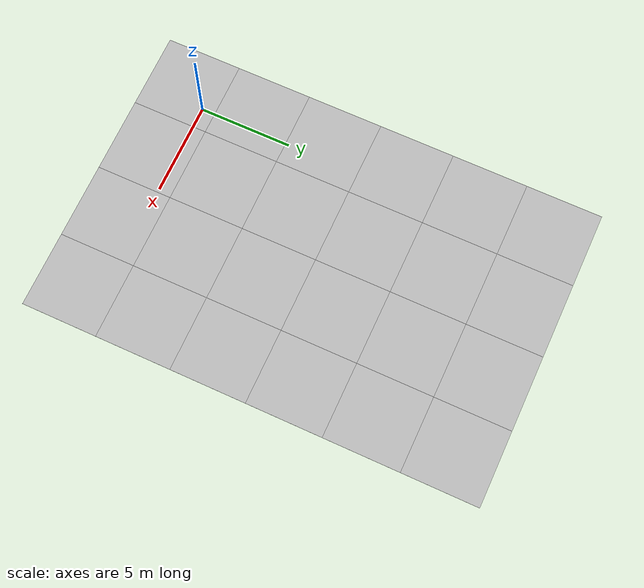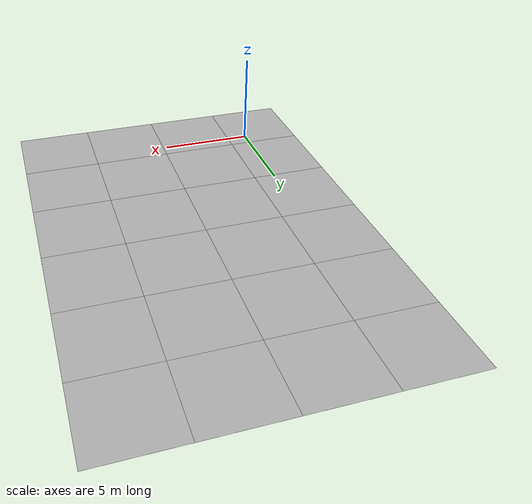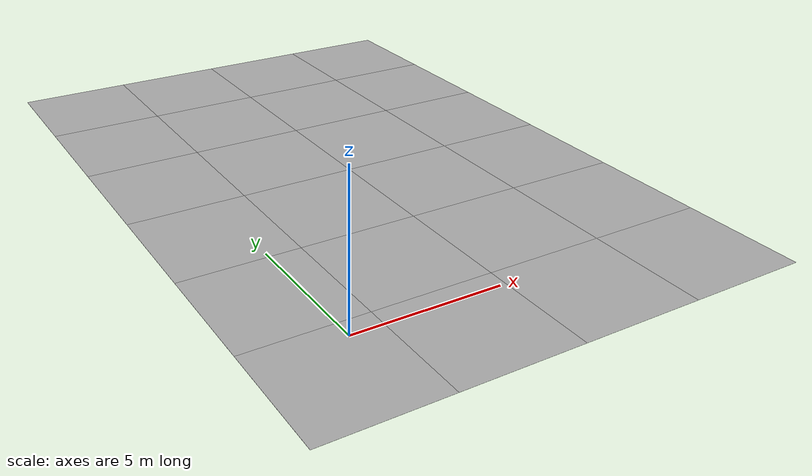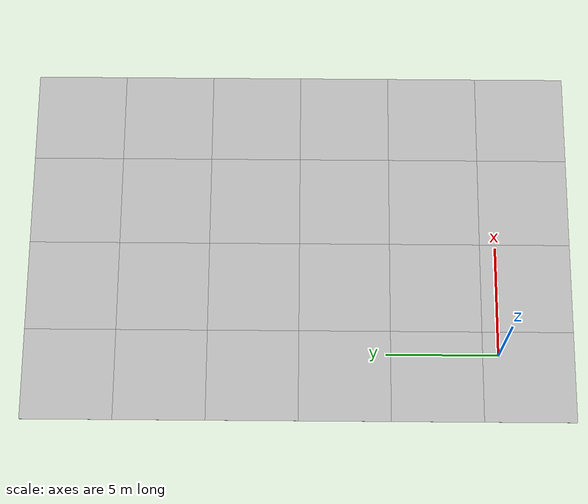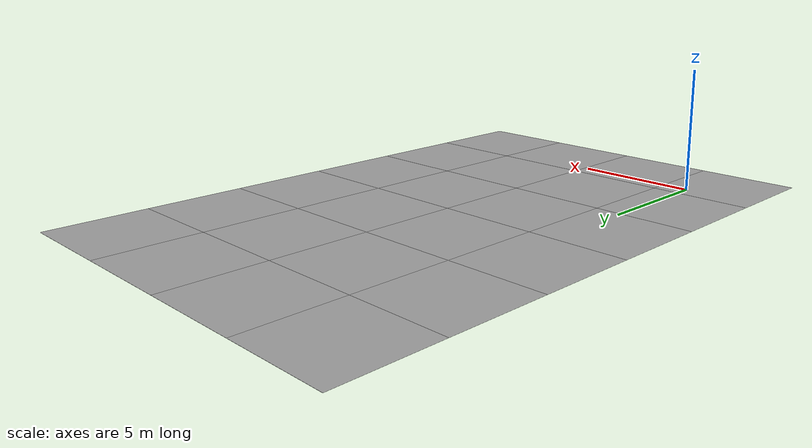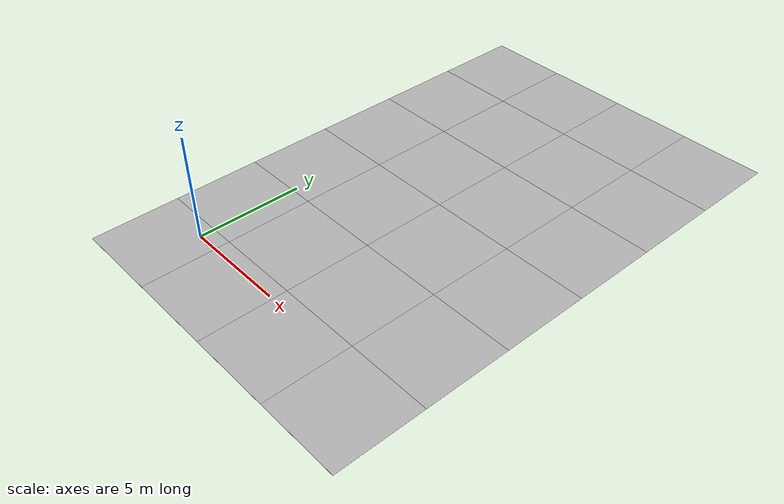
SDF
<sdf version='1.6'><world name='default'>
    <light name='sun_light' type='directional'>
      <pose frame=''>0 0 10 0 -0 0</pose>
      <diffuse>0.5 0.5 0.5 1</diffuse>
      <specular>0.1 0.1 0.1 1</specular>
      <direction>0.1 0.1 -0.9</direction>
      <attenuation>
        <range>20</range>
        <constant>0.5</constant>
        <linear>0.01</linear>
        <quadratic>0.001</quadratic>
      </attenuation>
      <cast_shadows>1</cast_shadows>
    </light>

    <model name='Tile/0-0'>
      <static>1</static>
      <link name='link'>
        <collision name='collision'>
          <geometry>
            <plane>
              <normal>0 0 1</normal>
              <size>4.096 4.096</size>
            </plane>
          </geometry>
          <surface>
            <friction>
              <ode>
                <mu>100</mu>
                <mu2>50</mu2>
              </ode>
              <torsional>
                <ode/>
              </torsional>
            </friction>
            <contact>
              <ode/>
            </contact>
            <bounce/>
          </surface>
          <max_contacts>10</max_contacts>
        </collision>
        <visual name='visual'>
          <cast_shadows>0</cast_shadows>
          <geometry>
            <plane>
              <normal>0 0 1</normal>
              <size>4.096 4.096</size>
            </plane>
          </geometry>
          <material>
            <script>
              <uri>file://materials/scripts</uri>
              <uri>file://materials/textures</uri>
              <name>Tile/2d6d550247164405bd7f7721bde8c66eb1b70c9c122a16d1426408409930bc02</name>
            </script>
          </material>
        </visual>
        <self_collide>0</self_collide>
        <enable_wind>0</enable_wind>
        <kinematic>0</kinematic>
      </link>
      <pose frame=''>-0.952 -1.3519999999999999 0 0 -0 0</pose>
    </model>

    <model name='Tile/0-1'>
      <static>1</static>
      <link name='link'>
        <collision name='collision'>
          <geometry>
            <plane>
              <normal>0 0 1</normal>
              <size>4.096 4.096</size>
            </plane>
          </geometry>
          <surface>
            <friction>
              <ode>
                <mu>100</mu>
                <mu2>50</mu2>
              </ode>
              <torsional>
                <ode/>
              </torsional>
            </friction>
            <contact>
              <ode/>
            </contact>
            <bounce/>
          </surface>
          <max_contacts>10</max_contacts>
        </collision>
        <visual name='visual'>
          <cast_shadows>0</cast_shadows>
          <geometry>
            <plane>
              <normal>0 0 1</normal>
              <size>4.096 4.096</size>
            </plane>
          </geometry>
          <material>
            <script>
              <uri>file://materials/scripts</uri>
              <uri>file://materials/textures</uri>
              <name>Tile/5eab350b8220ac9944dbdfa4ac3288c7c17e24c3bf5df0dfcf6173d64dae00a1</name>
            </script>
          </material>
        </visual>
        <self_collide>0</self_collide>
        <enable_wind>0</enable_wind>
        <kinematic>0</kinematic>
      </link>
      <pose frame=''>-0.952 2.744 0 0 -0 0</pose>
    </model>

    <model name='Tile/0-2'>
      <static>1</static>
      <link name='link'>
        <collision name='collision'>
          <geometry>
            <plane>
              <normal>0 0 1</normal>
              <size>4.096 4.096</size>
            </plane>
          </geometry>
          <surface>
            <friction>
              <ode>
                <mu>100</mu>
                <mu2>50</mu2>
              </ode>
              <torsional>
                <ode/>
              </torsional>
            </friction>
            <contact>
              <ode/>
            </contact>
            <bounce/>
          </surface>
          <max_contacts>10</max_contacts>
        </collision>
        <visual name='visual'>
          <cast_shadows>0</cast_shadows>
          <geometry>
            <plane>
              <normal>0 0 1</normal>
              <size>4.096 4.096</size>
            </plane>
          </geometry>
          <material>
            <script>
              <uri>file://materials/scripts</uri>
              <uri>file://materials/textures</uri>
              <name>Tile/5eab350b8220ac9944dbdfa4ac3288c7c17e24c3bf5df0dfcf6173d64dae00a1</name>
            </script>
          </material>
        </visual>
        <self_collide>0</self_collide>
        <enable_wind>0</enable_wind>
        <kinematic>0</kinematic>
      </link>
      <pose frame=''>-0.952 6.84 0 0 -0 0</pose>
    </model>

    <model name='Tile/0-3'>
      <static>1</static>
      <link name='link'>
        <collision name='collision'>
          <geometry>
            <plane>
              <normal>0 0 1</normal>
              <size>4.096 4.096</size>
            </plane>
          </geometry>
          <surface>
            <friction>
              <ode>
                <mu>100</mu>
                <mu2>50</mu2>
              </ode>
              <torsional>
                <ode/>
              </torsional>
            </friction>
            <contact>
              <ode/>
            </contact>
            <bounce/>
          </surface>
          <max_contacts>10</max_contacts>
        </collision>
        <visual name='visual'>
          <cast_shadows>0</cast_shadows>
          <geometry>
            <plane>
              <normal>0 0 1</normal>
              <size>4.096 4.096</size>
            </plane>
          </geometry>
          <material>
            <script>
              <uri>file://materials/scripts</uri>
              <uri>file://materials/textures</uri>
              <name>Tile/5eab350b8220ac9944dbdfa4ac3288c7c17e24c3bf5df0dfcf6173d64dae00a1</name>
            </script>
          </material>
        </visual>
        <self_collide>0</self_collide>
        <enable_wind>0</enable_wind>
        <kinematic>0</kinematic>
      </link>
      <pose frame=''>-0.952 10.936 0 0 -0 0</pose>
    </model>

    <model name='Tile/0-4'>
      <static>1</static>
      <link name='link'>
        <collision name='collision'>
          <geometry>
            <plane>
              <normal>0 0 1</normal>
              <size>4.096 4.096</size>
            </plane>
          </geometry>
          <surface>
            <friction>
              <ode>
                <mu>100</mu>
                <mu2>50</mu2>
              </ode>
              <torsional>
                <ode/>
              </torsional>
            </friction>
            <contact>
              <ode/>
            </contact>
            <bounce/>
          </surface>
          <max_contacts>10</max_contacts>
        </collision>
        <visual name='visual'>
          <cast_shadows>0</cast_shadows>
          <geometry>
            <plane>
              <normal>0 0 1</normal>
              <size>4.096 4.096</size>
            </plane>
          </geometry>
          <material>
            <script>
              <uri>file://materials/scripts</uri>
              <uri>file://materials/textures</uri>
              <name>Tile/5eab350b8220ac9944dbdfa4ac3288c7c17e24c3bf5df0dfcf6173d64dae00a1</name>
            </script>
          </material>
        </visual>
        <self_collide>0</self_collide>
        <enable_wind>0</enable_wind>
        <kinematic>0</kinematic>
      </link>
      <pose frame=''>-0.952 15.031999999999998 0 0 -0 0</pose>
    </model>

    <model name='Tile/0-5'>
      <static>1</static>
      <link name='link'>
        <collision name='collision'>
          <geometry>
            <plane>
              <normal>0 0 1</normal>
              <size>4.096 4.096</size>
            </plane>
          </geometry>
          <surface>
            <friction>
              <ode>
                <mu>100</mu>
                <mu2>50</mu2>
              </ode>
              <torsional>
                <ode/>
              </torsional>
            </friction>
            <contact>
              <ode/>
            </contact>
            <bounce/>
          </surface>
          <max_contacts>10</max_contacts>
        </collision>
        <visual name='visual'>
          <cast_shadows>0</cast_shadows>
          <geometry>
            <plane>
              <normal>0 0 1</normal>
              <size>4.096 4.096</size>
            </plane>
          </geometry>
          <material>
            <script>
              <uri>file://materials/scripts</uri>
              <uri>file://materials/textures</uri>
              <name>Tile/5eab350b8220ac9944dbdfa4ac3288c7c17e24c3bf5df0dfcf6173d64dae00a1</name>
            </script>
          </material>
        </visual>
        <self_collide>0</self_collide>
        <enable_wind>0</enable_wind>
        <kinematic>0</kinematic>
      </link>
      <pose frame=''>-0.952 19.128 0 0 -0 0</pose>
    </model>

    <model name='Tile/1-0'>
      <static>1</static>
      <link name='link'>
        <collision name='collision'>
          <geometry>
            <plane>
              <normal>0 0 1</normal>
              <size>4.096 4.096</size>
            </plane>
          </geometry>
          <surface>
            <friction>
              <ode>
                <mu>100</mu>
                <mu2>50</mu2>
              </ode>
              <torsional>
                <ode/>
              </torsional>
            </friction>
            <contact>
              <ode/>
            </contact>
            <bounce/>
          </surface>
          <max_contacts>10</max_contacts>
        </collision>
        <visual name='visual'>
          <cast_shadows>0</cast_shadows>
          <geometry>
            <plane>
              <normal>0 0 1</normal>
              <size>4.096 4.096</size>
            </plane>
          </geometry>
          <material>
            <script>
              <uri>file://materials/scripts</uri>
              <uri>file://materials/textures</uri>
              <name>Tile/ae5cc26feb82b0066c12f65bf03c7ebf14f680dca05fb5ed5e37624fc9694613</name>
            </script>
          </material>
        </visual>
        <self_collide>0</self_collide>
        <enable_wind>0</enable_wind>
        <kinematic>0</kinematic>
      </link>
      <pose frame=''>3.144 -1.3519999999999999 0 0 -0 0</pose>
    </model>

    <model name='Tile/1-1'>
      <static>1</static>
      <link name='link'>
        <collision name='collision'>
          <geometry>
            <plane>
              <normal>0 0 1</normal>
              <size>4.096 4.096</size>
            </plane>
          </geometry>
          <surface>
            <friction>
              <ode>
                <mu>100</mu>
                <mu2>50</mu2>
              </ode>
              <torsional>
                <ode/>
              </torsional>
            </friction>
            <contact>
              <ode/>
            </contact>
            <bounce/>
          </surface>
          <max_contacts>10</max_contacts>
        </collision>
        <visual name='visual'>
          <cast_shadows>0</cast_shadows>
          <geometry>
            <plane>
              <normal>0 0 1</normal>
              <size>4.096 4.096</size>
            </plane>
          </geometry>
          <material>
            <script>
              <uri>file://materials/scripts</uri>
              <uri>file://materials/textures</uri>
              <name>Tile/77b1446cc75e2ddb736e73e613d4e6facad5b66cd31564447ba85c9852f6356c</name>
            </script>
          </material>
        </visual>
        <self_collide>0</self_collide>
        <enable_wind>0</enable_wind>
        <kinematic>0</kinematic>
      </link>
      <pose frame=''>3.144 2.744 0 0 -0 0</pose>
    </model>

    <model name='Tile/1-2'>
      <static>1</static>
      <link name='link'>
        <collision name='collision'>
          <geometry>
            <plane>
              <normal>0 0 1</normal>
              <size>4.096 4.096</size>
            </plane>
          </geometry>
          <surface>
            <friction>
              <ode>
                <mu>100</mu>
                <mu2>50</mu2>
              </ode>
              <torsional>
                <ode/>
              </torsional>
            </friction>
            <contact>
              <ode/>
            </contact>
            <bounce/>
          </surface>
          <max_contacts>10</max_contacts>
        </collision>
        <visual name='visual'>
          <cast_shadows>0</cast_shadows>
          <geometry>
            <plane>
              <normal>0 0 1</normal>
              <size>4.096 4.096</size>
            </plane>
          </geometry>
          <material>
            <script>
              <uri>file://materials/scripts</uri>
              <uri>file://materials/textures</uri>
              <name>Tile/9db0aefe8433c3f39e6561b6b356e3acfa4dc2b74fd1b7c3708c8f91e3619750</name>
            </script>
          </material>
        </visual>
        <self_collide>0</self_collide>
        <enable_wind>0</enable_wind>
        <kinematic>0</kinematic>
      </link>
      <pose frame=''>3.144 6.84 0 0 -0 0</pose>
    </model>

    <model name='Tile/1-3'>
      <static>1</static>
      <link name='link'>
        <collision name='collision'>
          <geometry>
            <plane>
              <normal>0 0 1</normal>
              <size>4.096 4.096</size>
            </plane>
          </geometry>
          <surface>
            <friction>
              <ode>
                <mu>100</mu>
                <mu2>50</mu2>
              </ode>
              <torsional>
                <ode/>
              </torsional>
            </friction>
            <contact>
              <ode/>
            </contact>
            <bounce/>
          </surface>
          <max_contacts>10</max_contacts>
        </collision>
        <visual name='visual'>
          <cast_shadows>0</cast_shadows>
          <geometry>
            <plane>
              <normal>0 0 1</normal>
              <size>4.096 4.096</size>
            </plane>
          </geometry>
          <material>
            <script>
              <uri>file://materials/scripts</uri>
              <uri>file://materials/textures</uri>
              <name>Tile/011ab6bac121d00c6c88b9e3fe0040f498967b0ddd4f7b6ed0dda8084e6022ae</name>
            </script>
          </material>
        </visual>
        <self_collide>0</self_collide>
        <enable_wind>0</enable_wind>
        <kinematic>0</kinematic>
      </link>
      <pose frame=''>3.144 10.936 0 0 -0 0</pose>
    </model>

    <model name='Tile/1-4'>
      <static>1</static>
      <link name='link'>
        <collision name='collision'>
          <geometry>
            <plane>
              <normal>0 0 1</normal>
              <size>4.096 4.096</size>
            </plane>
          </geometry>
          <surface>
            <friction>
              <ode>
                <mu>100</mu>
                <mu2>50</mu2>
              </ode>
              <torsional>
                <ode/>
              </torsional>
            </friction>
            <contact>
              <ode/>
            </contact>
            <bounce/>
          </surface>
          <max_contacts>10</max_contacts>
        </collision>
        <visual name='visual'>
          <cast_shadows>0</cast_shadows>
          <geometry>
            <plane>
              <normal>0 0 1</normal>
              <size>4.096 4.096</size>
            </plane>
          </geometry>
          <material>
            <script>
              <uri>file://materials/scripts</uri>
              <uri>file://materials/textures</uri>
              <name>Tile/421b778df5c6dc1f463b1dd1608e46168d822f32df7a1205998a532e63bb3db2</name>
            </script>
          </material>
        </visual>
        <self_collide>0</self_collide>
        <enable_wind>0</enable_wind>
        <kinematic>0</kinematic>
      </link>
      <pose frame=''>3.144 15.031999999999998 0 0 -0 0</pose>
    </model>

    <model name='Tile/1-5'>
      <static>1</static>
      <link name='link'>
        <collision name='collision'>
          <geometry>
            <plane>
              <normal>0 0 1</normal>
              <size>4.096 4.096</size>
            </plane>
          </geometry>
          <surface>
            <friction>
              <ode>
                <mu>100</mu>
                <mu2>50</mu2>
              </ode>
              <torsional>
                <ode/>
              </torsional>
            </friction>
            <contact>
              <ode/>
            </contact>
            <bounce/>
          </surface>
          <max_contacts>10</max_contacts>
        </collision>
        <visual name='visual'>
          <cast_shadows>0</cast_shadows>
          <geometry>
            <plane>
              <normal>0 0 1</normal>
              <size>4.096 4.096</size>
            </plane>
          </geometry>
          <material>
            <script>
              <uri>file://materials/scripts</uri>
              <uri>file://materials/textures</uri>
              <name>Tile/5eab350b8220ac9944dbdfa4ac3288c7c17e24c3bf5df0dfcf6173d64dae00a1</name>
            </script>
          </material>
        </visual>
        <self_collide>0</self_collide>
        <enable_wind>0</enable_wind>
        <kinematic>0</kinematic>
      </link>
      <pose frame=''>3.144 19.128 0 0 -0 0</pose>
    </model>

    <model name='Tile/2-0'>
      <static>1</static>
      <link name='link'>
        <collision name='collision'>
          <geometry>
            <plane>
              <normal>0 0 1</normal>
              <size>4.096 4.096</size>
            </plane>
          </geometry>
          <surface>
            <friction>
              <ode>
                <mu>100</mu>
                <mu2>50</mu2>
              </ode>
              <torsional>
                <ode/>
              </torsional>
            </friction>
            <contact>
              <ode/>
            </contact>
            <bounce/>
          </surface>
          <max_contacts>10</max_contacts>
        </collision>
        <visual name='visual'>
          <cast_shadows>0</cast_shadows>
          <geometry>
            <plane>
              <normal>0 0 1</normal>
              <size>4.096 4.096</size>
            </plane>
          </geometry>
          <material>
            <script>
              <uri>file://materials/scripts</uri>
              <uri>file://materials/textures</uri>
              <name>Tile/5eab350b8220ac9944dbdfa4ac3288c7c17e24c3bf5df0dfcf6173d64dae00a1</name>
            </script>
          </material>
        </visual>
        <self_collide>0</self_collide>
        <enable_wind>0</enable_wind>
        <kinematic>0</kinematic>
      </link>
      <pose frame=''>7.24 -1.3519999999999999 0 0 -0 0</pose>
    </model>

    <model name='Tile/2-1'>
      <static>1</static>
      <link name='link'>
        <collision name='collision'>
          <geometry>
            <plane>
              <normal>0 0 1</normal>
              <size>4.096 4.096</size>
            </plane>
          </geometry>
          <surface>
            <friction>
              <ode>
                <mu>100</mu>
                <mu2>50</mu2>
              </ode>
              <torsional>
                <ode/>
              </torsional>
            </friction>
            <contact>
              <ode/>
            </contact>
            <bounce/>
          </surface>
          <max_contacts>10</max_contacts>
        </collision>
        <visual name='visual'>
          <cast_shadows>0</cast_shadows>
          <geometry>
            <plane>
              <normal>0 0 1</normal>
              <size>4.096 4.096</size>
            </plane>
          </geometry>
          <material>
            <script>
              <uri>file://materials/scripts</uri>
              <uri>file://materials/textures</uri>
              <name>Tile/5eab350b8220ac9944dbdfa4ac3288c7c17e24c3bf5df0dfcf6173d64dae00a1</name>
            </script>
          </material>
        </visual>
        <self_collide>0</self_collide>
        <enable_wind>0</enable_wind>
        <kinematic>0</kinematic>
      </link>
      <pose frame=''>7.24 2.744 0 0 -0 0</pose>
    </model>

    <model name='Tile/2-2'>
      <static>1</static>
      <link name='link'>
        <collision name='collision'>
          <geometry>
            <plane>
              <normal>0 0 1</normal>
              <size>4.096 4.096</size>
            </plane>
          </geometry>
          <surface>
            <friction>
              <ode>
                <mu>100</mu>
                <mu2>50</mu2>
              </ode>
              <torsional>
                <ode/>
              </torsional>
            </friction>
            <contact>
              <ode/>
            </contact>
            <bounce/>
          </surface>
          <max_contacts>10</max_contacts>
        </collision>
        <visual name='visual'>
          <cast_shadows>0</cast_shadows>
          <geometry>
            <plane>
              <normal>0 0 1</normal>
              <size>4.096 4.096</size>
            </plane>
          </geometry>
          <material>
            <script>
              <uri>file://materials/scripts</uri>
              <uri>file://materials/textures</uri>
              <name>Tile/fcee991beb64124d932dbc165c15b4ce698c7a131cd97cc4dda43a4933bc2864</name>
            </script>
          </material>
        </visual>
        <self_collide>0</self_collide>
        <enable_wind>0</enable_wind>
        <kinematic>0</kinematic>
      </link>
      <pose frame=''>7.24 6.84 0 0 -0 0</pose>
    </model>

    <model name='Tile/2-3'>
      <static>1</static>
      <link name='link'>
        <collision name='collision'>
          <geometry>
            <plane>
              <normal>0 0 1</normal>
              <size>4.096 4.096</size>
            </plane>
          </geometry>
          <surface>
            <friction>
              <ode>
                <mu>100</mu>
                <mu2>50</mu2>
              </ode>
              <torsional>
                <ode/>
              </torsional>
            </friction>
            <contact>
              <ode/>
            </contact>
            <bounce/>
          </surface>
          <max_contacts>10</max_contacts>
        </collision>
        <visual name='visual'>
          <cast_shadows>0</cast_shadows>
          <geometry>
            <plane>
              <normal>0 0 1</normal>
              <size>4.096 4.096</size>
            </plane>
          </geometry>
          <material>
            <script>
              <uri>file://materials/scripts</uri>
              <uri>file://materials/textures</uri>
              <name>Tile/ccbe482d97fefd8b5afc1b18cece4b328852e9a964a0c1187fccbd5c06e5e28a</name>
            </script>
          </material>
        </visual>
        <self_collide>0</self_collide>
        <enable_wind>0</enable_wind>
        <kinematic>0</kinematic>
      </link>
      <pose frame=''>7.24 10.936 0 0 -0 0</pose>
    </model>

    <model name='Tile/2-4'>
      <static>1</static>
      <link name='link'>
        <collision name='collision'>
          <geometry>
            <plane>
              <normal>0 0 1</normal>
              <size>4.096 4.096</size>
            </plane>
          </geometry>
          <surface>
            <friction>
              <ode>
                <mu>100</mu>
                <mu2>50</mu2>
              </ode>
              <torsional>
                <ode/>
              </torsional>
            </friction>
            <contact>
              <ode/>
            </contact>
            <bounce/>
          </surface>
          <max_contacts>10</max_contacts>
        </collision>
        <visual name='visual'>
          <cast_shadows>0</cast_shadows>
          <geometry>
            <plane>
              <normal>0 0 1</normal>
              <size>4.096 4.096</size>
            </plane>
          </geometry>
          <material>
            <script>
              <uri>file://materials/scripts</uri>
              <uri>file://materials/textures</uri>
              <name>Tile/5eab350b8220ac9944dbdfa4ac3288c7c17e24c3bf5df0dfcf6173d64dae00a1</name>
            </script>
          </material>
        </visual>
        <self_collide>0</self_collide>
        <enable_wind>0</enable_wind>
        <kinematic>0</kinematic>
      </link>
      <pose frame=''>7.24 15.031999999999998 0 0 -0 0</pose>
    </model>

    <model name='Tile/2-5'>
      <static>1</static>
      <link name='link'>
        <collision name='collision'>
          <geometry>
            <plane>
              <normal>0 0 1</normal>
              <size>4.096 4.096</size>
            </plane>
          </geometry>
          <surface>
            <friction>
              <ode>
                <mu>100</mu>
                <mu2>50</mu2>
              </ode>
              <torsional>
                <ode/>
              </torsional>
            </friction>
            <contact>
              <ode/>
            </contact>
            <bounce/>
          </surface>
          <max_contacts>10</max_contacts>
        </collision>
        <visual name='visual'>
          <cast_shadows>0</cast_shadows>
          <geometry>
            <plane>
              <normal>0 0 1</normal>
              <size>4.096 4.096</size>
            </plane>
          </geometry>
          <material>
            <script>
              <uri>file://materials/scripts</uri>
              <uri>file://materials/textures</uri>
              <name>Tile/5eab350b8220ac9944dbdfa4ac3288c7c17e24c3bf5df0dfcf6173d64dae00a1</name>
            </script>
          </material>
        </visual>
        <self_collide>0</self_collide>
        <enable_wind>0</enable_wind>
        <kinematic>0</kinematic>
      </link>
      <pose frame=''>7.24 19.128 0 0 -0 0</pose>
    </model>

    <model name='Tile/3-0'>
      <static>1</static>
      <link name='link'>
        <collision name='collision'>
          <geometry>
            <plane>
              <normal>0 0 1</normal>
              <size>4.096 4.096</size>
            </plane>
          </geometry>
          <surface>
            <friction>
              <ode>
                <mu>100</mu>
                <mu2>50</mu2>
              </ode>
              <torsional>
                <ode/>
              </torsional>
            </friction>
            <contact>
              <ode/>
            </contact>
            <bounce/>
          </surface>
          <max_contacts>10</max_contacts>
        </collision>
        <visual name='visual'>
          <cast_shadows>0</cast_shadows>
          <geometry>
            <plane>
              <normal>0 0 1</normal>
              <size>4.096 4.096</size>
            </plane>
          </geometry>
          <material>
            <script>
              <uri>file://materials/scripts</uri>
              <uri>file://materials/textures</uri>
              <name>Tile/5eab350b8220ac9944dbdfa4ac3288c7c17e24c3bf5df0dfcf6173d64dae00a1</name>
            </script>
          </material>
        </visual>
        <self_collide>0</self_collide>
        <enable_wind>0</enable_wind>
        <kinematic>0</kinematic>
      </link>
      <pose frame=''>11.336 -1.3519999999999999 0 0 -0 0</pose>
    </model>

    <model name='Tile/3-1'>
      <static>1</static>
      <link name='link'>
        <collision name='collision'>
          <geometry>
            <plane>
              <normal>0 0 1</normal>
              <size>4.096 4.096</size>
            </plane>
          </geometry>
          <surface>
            <friction>
              <ode>
                <mu>100</mu>
                <mu2>50</mu2>
              </ode>
              <torsional>
                <ode/>
              </torsional>
            </friction>
            <contact>
              <ode/>
            </contact>
            <bounce/>
          </surface>
          <max_contacts>10</max_contacts>
        </collision>
        <visual name='visual'>
          <cast_shadows>0</cast_shadows>
          <geometry>
            <plane>
              <normal>0 0 1</normal>
              <size>4.096 4.096</size>
            </plane>
          </geometry>
          <material>
            <script>
              <uri>file://materials/scripts</uri>
              <uri>file://materials/textures</uri>
              <name>Tile/5eab350b8220ac9944dbdfa4ac3288c7c17e24c3bf5df0dfcf6173d64dae00a1</name>
            </script>
          </material>
        </visual>
        <self_collide>0</self_collide>
        <enable_wind>0</enable_wind>
        <kinematic>0</kinematic>
      </link>
      <pose frame=''>11.336 2.744 0 0 -0 0</pose>
    </model>

    <model name='Tile/3-2'>
      <static>1</static>
      <link name='link'>
        <collision name='collision'>
          <geometry>
            <plane>
              <normal>0 0 1</normal>
              <size>4.096 4.096</size>
            </plane>
          </geometry>
          <surface>
            <friction>
              <ode>
                <mu>100</mu>
                <mu2>50</mu2>
              </ode>
              <torsional>
                <ode/>
              </torsional>
            </friction>
            <contact>
              <ode/>
            </contact>
            <bounce/>
          </surface>
          <max_contacts>10</max_contacts>
        </collision>
        <visual name='visual'>
          <cast_shadows>0</cast_shadows>
          <geometry>
            <plane>
              <normal>0 0 1</normal>
              <size>4.096 4.096</size>
            </plane>
          </geometry>
          <material>
            <script>
              <uri>file://materials/scripts</uri>
              <uri>file://materials/textures</uri>
              <name>Tile/5eab350b8220ac9944dbdfa4ac3288c7c17e24c3bf5df0dfcf6173d64dae00a1</name>
            </script>
          </material>
        </visual>
        <self_collide>0</self_collide>
        <enable_wind>0</enable_wind>
        <kinematic>0</kinematic>
      </link>
      <pose frame=''>11.336 6.84 0 0 -0 0</pose>
    </model>

    <model name='Tile/3-3'>
      <static>1</static>
      <link name='link'>
        <collision name='collision'>
          <geometry>
            <plane>
              <normal>0 0 1</normal>
              <size>4.096 4.096</size>
            </plane>
          </geometry>
          <surface>
            <friction>
              <ode>
                <mu>100</mu>
                <mu2>50</mu2>
              </ode>
              <torsional>
                <ode/>
              </torsional>
            </friction>
            <contact>
              <ode/>
            </contact>
            <bounce/>
          </surface>
          <max_contacts>10</max_contacts>
        </collision>
        <visual name='visual'>
          <cast_shadows>0</cast_shadows>
          <geometry>
            <plane>
              <normal>0 0 1</normal>
              <size>4.096 4.096</size>
            </plane>
          </geometry>
          <material>
            <script>
              <uri>file://materials/scripts</uri>
              <uri>file://materials/textures</uri>
              <name>Tile/5eab350b8220ac9944dbdfa4ac3288c7c17e24c3bf5df0dfcf6173d64dae00a1</name>
            </script>
          </material>
        </visual>
        <self_collide>0</self_collide>
        <enable_wind>0</enable_wind>
        <kinematic>0</kinematic>
      </link>
      <pose frame=''>11.336 10.936 0 0 -0 0</pose>
    </model>

    <model name='Tile/3-4'>
      <static>1</static>
      <link name='link'>
        <collision name='collision'>
          <geometry>
            <plane>
              <normal>0 0 1</normal>
              <size>4.096 4.096</size>
            </plane>
          </geometry>
          <surface>
            <friction>
              <ode>
                <mu>100</mu>
                <mu2>50</mu2>
              </ode>
              <torsional>
                <ode/>
              </torsional>
            </friction>
            <contact>
              <ode/>
            </contact>
            <bounce/>
          </surface>
          <max_contacts>10</max_contacts>
        </collision>
        <visual name='visual'>
          <cast_shadows>0</cast_shadows>
          <geometry>
            <plane>
              <normal>0 0 1</normal>
              <size>4.096 4.096</size>
            </plane>
          </geometry>
          <material>
            <script>
              <uri>file://materials/scripts</uri>
              <uri>file://materials/textures</uri>
              <name>Tile/5eab350b8220ac9944dbdfa4ac3288c7c17e24c3bf5df0dfcf6173d64dae00a1</name>
            </script>
          </material>
        </visual>
        <self_collide>0</self_collide>
        <enable_wind>0</enable_wind>
        <kinematic>0</kinematic>
      </link>
      <pose frame=''>11.336 15.031999999999998 0 0 -0 0</pose>
    </model>

    <model name='Tile/3-5'>
      <static>1</static>
      <link name='link'>
        <collision name='collision'>
          <geometry>
            <plane>
              <normal>0 0 1</normal>
              <size>4.096 4.096</size>
            </plane>
          </geometry>
          <surface>
            <friction>
              <ode>
                <mu>100</mu>
                <mu2>50</mu2>
              </ode>
              <torsional>
                <ode/>
              </torsional>
            </friction>
            <contact>
              <ode/>
            </contact>
            <bounce/>
          </surface>
          <max_contacts>10</max_contacts>
        </collision>
        <visual name='visual'>
          <cast_shadows>0</cast_shadows>
          <geometry>
            <plane>
              <normal>0 0 1</normal>
              <size>4.096 4.096</size>
            </plane>
          </geometry>
          <material>
            <script>
              <uri>file://materials/scripts</uri>
              <uri>file://materials/textures</uri>
              <name>Tile/5eab350b8220ac9944dbdfa4ac3288c7c17e24c3bf5df0dfcf6173d64dae00a1</name>
            </script>
          </material>
        </visual>
        <self_collide>0</self_collide>
        <enable_wind>0</enable_wind>
        <kinematic>0</kinematic>
      </link>
      <pose frame=''>11.336 19.128 0 0 -0 0</pose>
    </model>
    </world></sdf>
